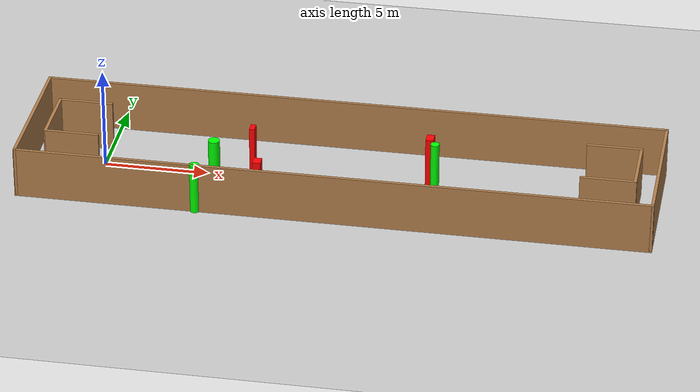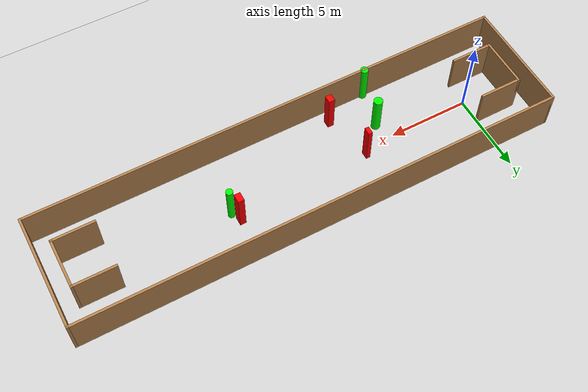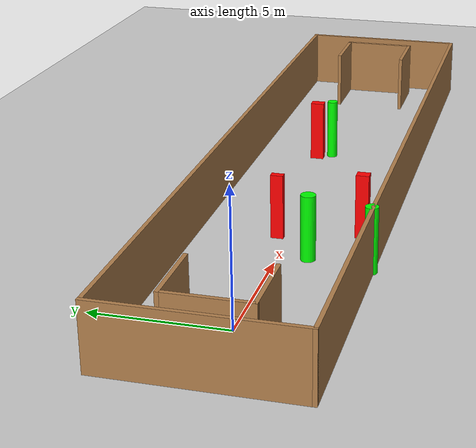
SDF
<sdf version="1.7">
 <world name="default">
  <light name="sun" type="directional">
   <pose>0 0 10 0 -0 0</pose>
   <diffuse>0.8 0.8 0.8 1</diffuse>
   <specular>0.2 0.2 0.2 1</specular>
   <attenuation>
    <range>1000</range>
    <constant>0.9</constant>
    <linear>0.01</linear>
    <quadratic>0.001</quadratic>
   </attenuation>
   <direction>-0.5 0.1 -0.9</direction>
   <spot><inner_angle>0</inner_angle><outer_angle>0</outer_angle><falloff>0</falloff></spot>
  </light>
  <model name="ground_plane">
   <static>1</static>
   <link name="link">
    <collision name="collision">
     <geometry><plane><normal>0 0 1</normal><size>100 100</size></plane></geometry>
     <surface>
      <contact><collide_bitmask>65535</collide_bitmask></contact>
      <friction><ode><mu>100</mu><mu2>50</mu2></ode></friction>
     </surface>
    </collision>
    <visual name="visual">
     <cast_shadows>0</cast_shadows>
     <geometry><plane><normal>0 0 1</normal><size>100 100</size></plane></geometry>
     <material>
      <script><uri>file://media/materials/scripts/gazebo.material</uri><name>Gazebo/Grey</name></script>
     </material>
    </visual>
   </link>
  </model>
  <gravity>0 0 -9.8</gravity>
  <magnetic_field>6e-06 2.3e-05 -4.2e-05</magnetic_field>
  <atmosphere type="adiabatic"/>
  <physics type="ode">
   <max_step_size>0.001</max_step_size>
   <real_time_factor>1</real_time_factor>
   <real_time_update_rate>1000</real_time_update_rate>
  </physics>
  <scene><ambient>0.4 0.4 0.4 1</ambient><background>0.7 0.7 0.7 1</background><shadows>1</shadows></scene>
  <spherical_coordinates>
   <surface_model>EARTH_WGS84</surface_model>
   <latitude_deg>0</latitude_deg>
   <longitude_deg>0</longitude_deg>
   <elevation>0</elevation>
   <heading_deg>0</heading_deg>
  </spherical_coordinates>
  <model name="my_base_walls">
   <link name="Wall_0">
    <collision name="Wall_0_Collision">
     <geometry><box><size>7.15 0.15 2.5</size></box></geometry>
     <pose>0 0 1.25 0 -0 0</pose>
    </collision>
    <visual name="Wall_0_Visual">
     <pose>0 0 1.25 0 -0 0</pose>
     <geometry><box><size>7.15 0.15 2.5</size></box></geometry>
     <material>
      <script><uri>file://media/materials/scripts/gazebo.material</uri><name>Gazebo/Wood</name></script>
      <ambient>1 1 1 1</ambient>
     </material>
     <meta><layer>0</layer></meta>
    </visual>
    <pose>-15 0 0 0 -0 1.5708</pose>
   </link>
   <link name="Wall_10">
    <collision name="Wall_10_Collision">
     <geometry><box><size>2.65 0.15 2.5</size></box></geometry>
     <pose>0 0 1.25 0 -0 0</pose>
    </collision>
    <visual name="Wall_10_Visual">
     <pose>0 0 1.25 0 -0 0</pose>
     <geometry><box><size>2.65 0.15 2.5</size></box></geometry>
     <material>
      <script><uri>file://media/materials/scripts/gazebo.material</uri><name>Gazebo/Wood</name></script>
      <ambient>1 1 1 1</ambient>
     </material>
     <meta><layer>0</layer></meta>
    </visual>
    <pose>-12.75 -1.5 0 0 -0 0</pose>
   </link>
   <link name="Wall_12">
    <collision name="Wall_12_Collision">
     <geometry><box><size>2.65 0.15 2.5</size></box></geometry>
     <pose>0 0 1.25 0 -0 0</pose>
    </collision>
    <visual name="Wall_12_Visual">
     <pose>0 0 1.25 0 -0 0</pose>
     <geometry><box><size>2.65 0.15 2.5</size></box></geometry>
     <material>
      <script><uri>file://media/materials/scripts/gazebo.material</uri><name>Gazebo/Wood</name></script>
      <ambient>1 1 1 1</ambient>
     </material>
     <meta><layer>0</layer></meta>
    </visual>
    <pose>-12.75 1.5 0 0 -0 0</pose>
   </link>
   <link name="Wall_14">
    <collision name="Wall_14_Collision">
     <geometry><box><size>3.15 0.15 2.5</size></box></geometry>
     <pose>0 0 1.25 0 -0 0</pose>
    </collision>
    <visual name="Wall_14_Visual">
     <pose>0 0 1.25 0 -0 0</pose>
     <geometry><box><size>3.15 0.15 2.5</size></box></geometry>
     <material>
      <script><uri>file://media/materials/scripts/gazebo.material</uri><name>Gazebo/Wood</name></script>
      <ambient>1 1 1 1</ambient>
     </material>
     <meta><layer>0</layer></meta>
    </visual>
    <pose>14 0 0 0 -0 -1.5708</pose>
   </link>
   <link name="Wall_15">
    <collision name="Wall_15_Collision">
     <geometry><box><size>2.65 0.15 2.5</size></box></geometry>
     <pose>0 0 1.25 0 -0 0</pose>
    </collision>
    <visual name="Wall_15_Visual">
     <pose>0 0 1.25 0 -0 0</pose>
     <geometry><box><size>2.65 0.15 2.5</size></box></geometry>
     <material>
      <script><uri>file://media/materials/scripts/gazebo.material</uri><name>Gazebo/Wood</name></script>
      <ambient>1 1 1 1</ambient>
     </material>
     <meta><layer>0</layer></meta>
    </visual>
    <pose>12.75 -1.5 0 0 -0 3.14159</pose>
   </link>
   <link name="Wall_17">
    <collision name="Wall_17_Collision">
     <geometry><box><size>2.65 0.15 2.5</size></box></geometry>
     <pose>0 0 1.25 0 -0 0</pose>
    </collision>
    <visual name="Wall_17_Visual">
     <pose>0 0 1.25 0 -0 0</pose>
     <geometry><box><size>2.65 0.15 2.5</size></box></geometry>
     <material>
      <script><uri>file://media/materials/scripts/gazebo.material</uri><name>Gazebo/Wood</name></script>
      <ambient>1 1 1 1</ambient>
     </material>
     <meta><layer>0</layer></meta>
    </visual>
    <pose>12.75 1.5 0 0 -0 3.14159</pose>
   </link>
   <link name="Wall_2">
    <collision name="Wall_2_Collision">
     <geometry><box><size>30.15 0.15 2.5</size></box></geometry>
     <pose>0 0 1.25 0 -0 0</pose>
    </collision>
    <visual name="Wall_2_Visual">
     <pose>0 0 1.25 0 -0 0</pose>
     <geometry><box><size>30.15 0.15 2.5</size></box></geometry>
     <material>
      <script><uri>file://media/materials/scripts/gazebo.material</uri><name>Gazebo/Wood</name></script>
      <ambient>1 1 1 1</ambient>
     </material>
     <meta><layer>0</layer></meta>
    </visual>
    <pose>-0 -3.5 0 0 -0 0</pose>
   </link>
   <link name="Wall_4">
    <collision name="Wall_4_Collision">
     <geometry><box><size>30.15 0.15 2.5</size></box></geometry>
     <pose>0 0 1.25 0 -0 0</pose>
    </collision>
    <visual name="Wall_4_Visual">
     <pose>0 0 1.25 0 -0 0</pose>
     <geometry><box><size>30.15 0.15 2.5</size></box></geometry>
     <material>
      <script><uri>file://media/materials/scripts/gazebo.material</uri><name>Gazebo/Wood</name></script>
      <ambient>1 1 1 1</ambient>
     </material>
     <meta><layer>0</layer></meta>
    </visual>
    <pose>-0 3.5 0 0 -0 0</pose>
   </link>
   <link name="Wall_6">
    <collision name="Wall_6_Collision">
     <geometry><box><size>7.15 0.15 2.5</size></box></geometry>
     <pose>0 0 1.25 0 -0 0</pose>
    </collision>
    <visual name="Wall_6_Visual">
     <pose>0 0 1.25 0 -0 0</pose>
     <geometry><box><size>7.15 0.15 2.5</size></box></geometry>
     <material>
      <script><uri>file://media/materials/scripts/gazebo.material</uri><name>Gazebo/Wood</name></script>
      <ambient>1 1 1 1</ambient>
     </material>
     <meta><layer>0</layer></meta>
    </visual>
    <pose>15 0 0 0 -0 -1.5708</pose>
   </link>
   <link name="Wall_9">
    <collision name="Wall_9_Collision">
     <geometry><box><size>3.15 0.15 2.5</size></box></geometry>
     <pose>0 0 1.25 0 -0 0</pose>
    </collision>
    <visual name="Wall_9_Visual">
     <pose>0 0 1.25 0 -0 0</pose>
     <geometry><box><size>3.15 0.15 2.5</size></box></geometry>
     <material>
      <script><uri>file://media/materials/scripts/gazebo.material</uri><name>Gazebo/Wood</name></script>
      <ambient>1 1 1 1</ambient>
     </material>
     <meta><layer>0</layer></meta>
    </visual>
    <pose>-14 0 0 0 -0 -1.5708</pose>
   </link>
   <static>1</static>
   <pose>11.5 0 0 0 -0 0</pose>
  </model>
  <model name="cylinder1">
   <static>1</static>
   <link name="link">
    <inertial>
     <mass>1</mass>
     <inertia><ixx>0.5</ixx><ixy>0</ixy><ixz>0</ixz><iyy>0.5</iyy><iyz>0</iyz><izz>1</izz></inertia>
    </inertial>
    <collision name="collision">
     <geometry><cylinder><radius>0.24094612970111828</radius><length>2.5</length></cylinder></geometry>
    </collision>
    <visual name="visual">
     <geometry><cylinder><radius>0.24094612970111828</radius><length>2.5</length></cylinder></geometry>
     <material>
      <ambient>0 1 0 1</ambient>
      <diffuse>0 1 0 1</diffuse>
      <specular>0.1 0.1 0.1 1</specular>
      <emissive>0 0 0 0</emissive>
     </material>
    </visual>
   </link>
   <pose>5.090210313537753 -3.4542655286522823 1.25 0 0 0</pose>
  </model>
  <model name="cylinder2">
   <static>1</static>
   <link name="link">
    <inertial>
     <mass>1</mass>
     <inertia><ixx>0.5</ixx><ixy>0</ixy><ixz>0</ixz><iyy>0.5</iyy><iyz>0</iyz><izz>1</izz></inertia>
    </inertial>
    <collision name="collision">
     <geometry><cylinder><radius>0.27654212991496513</radius><length>2.5</length></cylinder></geometry>
    </collision>
    <visual name="visual">
     <geometry><cylinder><radius>0.27654212991496513</radius><length>2.5</length></cylinder></geometry>
     <material>
      <ambient>0 1 0 1</ambient>
      <diffuse>0 1 0 1</diffuse>
      <specular>0.1 0.1 0.1 1</specular>
      <emissive>0 0 0 0</emissive>
     </material>
    </visual>
   </link>
   <pose>5.5578395098495665 -1.0993246269066752 1.25 0 0 0</pose>
  </model>
  <model name="cylinder3">
   <static>1</static>
   <link name="link">
    <inertial>
     <mass>1</mass>
     <inertia><ixx>0.5</ixx><ixy>0</ixy><ixz>0</ixz><iyy>0.5</iyy><iyz>0</iyz><izz>1</izz></inertia>
    </inertial>
    <collision name="collision">
     <geometry><cylinder><radius>0.210649255215327</radius><length>2.5</length></cylinder></geometry>
    </collision>
    <visual name="visual">
     <geometry><cylinder><radius>0.210649255215327</radius><length>2.5</length></cylinder></geometry>
     <material>
      <ambient>0 1 0 1</ambient>
      <diffuse>0 1 0 1</diffuse>
      <specular>0.1 0.1 0.1 1</specular>
      <emissive>0 0 0 0</emissive>
     </material>
    </visual>
   </link>
   <pose>15.881817085325656 0.29929890120501224 1.25 0 0 0</pose>
  </model>
  <model name="box1">
   <static>1</static>
   <link name="link">
    <inertial>
     <mass>1</mass>
     <inertia><ixx>0.083</ixx><ixy>0</ixy><ixz>0</ixz><iyy>0.083</iyy><iyz>0</iyz><izz>0.083</izz></inertia>
    </inertial>
    <collision name="collision">
     <geometry><box><size>0.25775683154939427 0.4744734586460856 2.5</size></box></geometry>
    </collision>
    <visual name="visual">
     <geometry><box><size>0.25775683154939427 0.4744734586460856 2.5</size></box></geometry>
     <material>
      <ambient>1 0 0 1</ambient>
      <diffuse>1 0 0 1</diffuse>
      <specular>0.1 0.1 0.1 1</specular>
      <emissive>0 0 0 0</emissive>
     </material>
    </visual>
    <sensor name="my_contact" type="contact">
     <contact><collision>box_collision</collision><topic>__default_topic__</topic></contact>
    </sensor>
   </link>
   <pose>7.123943355895079 0.4346476302831461 1.25 0 0 0</pose>
  </model>
  <model name="box2">
   <static>1</static>
   <link name="link">
    <inertial>
     <mass>1</mass>
     <inertia><ixx>0.083</ixx><ixy>0</ixy><ixz>0</ixz><iyy>0.083</iyy><iyz>0</iyz><izz>0.083</izz></inertia>
    </inertial>
    <collision name="collision">
     <geometry><box><size>0.3836166313701358 0.48531089842165387 2.5</size></box></geometry>
    </collision>
    <visual name="visual">
     <geometry><box><size>0.3836166313701358 0.48531089842165387 2.5</size></box></geometry>
     <material>
      <ambient>1 0 0 1</ambient>
      <diffuse>1 0 0 1</diffuse>
      <specular>0.1 0.1 0.1 1</specular>
      <emissive>0 0 0 0</emissive>
     </material>
    </visual>
    <sensor name="my_contact" type="contact">
     <contact><collision>box_collision</collision><topic>__default_topic__</topic></contact>
    </sensor>
   </link>
   <pose>7.921766389268461 -2.5973886800567314 1.25 0 0 0</pose>
  </model>
  <model name="box3">
   <static>1</static>
   <link name="link">
    <inertial>
     <mass>1</mass>
     <inertia><ixx>0.083</ixx><ixy>0</ixy><ixz>0</ixz><iyy>0.083</iyy><iyz>0</iyz><izz>0.083</izz></inertia>
    </inertial>
    <collision name="collision">
     <geometry><box><size>0.3737430318419419 0.5428969330400792 2.5</size></box></geometry>
    </collision>
    <visual name="visual">
     <geometry><box><size>0.3737430318419419 0.5428969330400792 2.5</size></box></geometry>
     <material>
      <ambient>1 0 0 1</ambient>
      <diffuse>1 0 0 1</diffuse>
      <specular>0.1 0.1 0.1 1</specular>
      <emissive>0 0 0 0</emissive>
     </material>
    </visual>
    <sensor name="my_contact" type="contact">
     <contact><collision>box_collision</collision><topic>__default_topic__</topic></contact>
    </sensor>
   </link>
   <pose>15.56799993657995 0.8702125726519387 1.25 0 0 0</pose>
  </model>
 </world>
</sdf>
